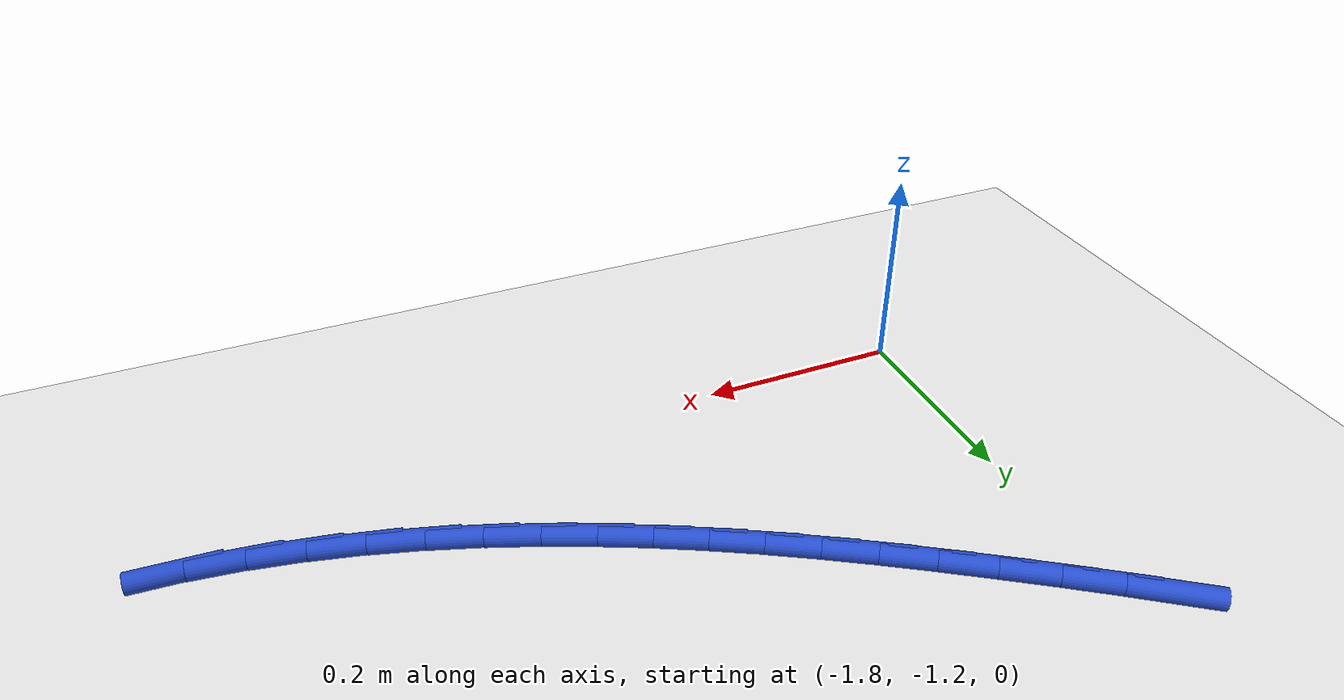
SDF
<sdf version="1.6">
 <world name="default">
  <model name="ground_plane">
   <static>1</static>
   <link name="link">
    <collision name="collision">
     <geometry><plane><normal>0 0 1</normal><size>100 100</size></plane></geometry>
     <surface><friction><ode><mu>100</mu><mu2>50</mu2></ode></friction></surface>
    </collision>
    <visual name="visual">
     <cast_shadows>0</cast_shadows>
     <geometry><plane><normal>0 0 1</normal><size>100 100</size></plane></geometry>
     <material>
      <script><uri>file://media/materials/scripts/gazebo.material</uri><name>Gazebo/WhiteGlow</name></script>
     </material>
    </visual>
   </link>
  </model>
  <model name="line">
   <link name="link_88">
    <pose>-1.8318578068275178 -0.7931754695844486 0.01 0 1.57 -0.6133328508145751</pose>
    <collision name="collision">
     <geometry><cylinder><radius>0.01</radius><length>0.08</length></cylinder></geometry>
    </collision>
    <visual name="visual">
     <material>
      <script><name>Gazebo/Blue</name><uri>file://media/materials/scripts/gazebo.material</uri></script>
     </material>
     <geometry><cylinder><radius>0.01</radius><length>0.08</length></cylinder></geometry>
    </visual>
   </link>
   <link name="link_89">
    <pose>-1.7900398897268737 -0.8226107405698052 0.01 0 1.57 -0.5955337732191922</pose>
    <collision name="collision">
     <geometry><cylinder><radius>0.01</radius><length>0.08</length></cylinder></geometry>
    </collision>
    <visual name="visual">
     <material>
      <script><name>Gazebo/Blue</name><uri>file://media/materials/scripts/gazebo.material</uri></script>
     </material>
     <geometry><cylinder><radius>0.01</radius><length>0.08</length></cylinder></geometry>
    </visual>
   </link>
   <link name="link_90">
    <pose>-1.748051304213296 -0.8510622113225482 0.01 0 1.57 -0.5842450995692731</pose>
    <collision name="collision">
     <geometry><cylinder><radius>0.01</radius><length>0.08</length></cylinder></geometry>
    </collision>
    <visual name="visual">
     <material>
      <script><name>Gazebo/Blue</name><uri>file://media/materials/scripts/gazebo.material</uri></script>
     </material>
     <geometry><cylinder><radius>0.01</radius><length>0.08</length></cylinder></geometry>
    </visual>
   </link>
   <link name="link_91">
    <pose>-1.706406506679395 -0.8785999460265086 0.01 0 1.57 -0.5732049060419735</pose>
    <collision name="collision">
     <geometry><cylinder><radius>0.01</radius><length>0.08</length></cylinder></geometry>
    </collision>
    <visual name="visual">
     <material>
      <script><name>Gazebo/Blue</name><uri>file://media/materials/scripts/gazebo.material</uri></script>
     </material>
     <geometry><cylinder><radius>0.01</radius><length>0.08</length></cylinder></geometry>
    </visual>
   </link>
   <link name="link_92">
    <pose>-1.6651506532471734 -0.9052305782405219 0.01 0 1.57 -0.5584300908195082</pose>
    <collision name="collision">
     <geometry><cylinder><radius>0.01</radius><length>0.08</length></cylinder></geometry>
    </collision>
    <visual name="visual">
     <material>
      <script><name>Gazebo/Blue</name><uri>file://media/materials/scripts/gazebo.material</uri></script>
     </material>
     <geometry><cylinder><radius>0.01</radius><length>0.08</length></cylinder></geometry>
    </visual>
   </link>
   <link name="link_93">
    <pose>-1.6240312744871561 -0.9309205144536223 0.01 0 1.57 -0.5399012512269443</pose>
    <collision name="collision">
     <geometry><cylinder><radius>0.01</radius><length>0.08</length></cylinder></geometry>
    </collision>
    <visual name="visual">
     <material>
      <script><name>Gazebo/Blue</name><uri>file://media/materials/scripts/gazebo.material</uri></script>
     </material>
     <geometry><cylinder><radius>0.01</radius><length>0.08</length></cylinder></geometry>
    </visual>
   </link>
   <link name="link_94">
    <pose>-1.582791166820843 -0.955635521287258 0.01 0 1.57 -0.5177703478051598</pose>
    <collision name="collision">
     <geometry><cylinder><radius>0.01</radius><length>0.08</length></cylinder></geometry>
    </collision>
    <visual name="visual">
     <material>
      <script><name>Gazebo/Blue</name><uri>file://media/materials/scripts/gazebo.material</uri></script>
     </material>
     <geometry><cylinder><radius>0.01</radius><length>0.08</length></cylinder></geometry>
    </visual>
   </link>
   <link name="link_95">
    <pose>-1.5411731266697324 -0.9793413653628765 0.01 0 1.57 -0.49230220709086614</pose>
    <collision name="collision">
     <geometry><cylinder><radius>0.01</radius><length>0.08</length></cylinder></geometry>
    </collision>
    <visual name="visual">
     <material>
      <script><name>Gazebo/Blue</name><uri>file://media/materials/scripts/gazebo.material</uri></script>
     </material>
     <geometry><cylinder><radius>0.01</radius><length>0.08</length></cylinder></geometry>
    </visual>
   </link>
   <link name="link_96">
    <pose>-1.4989199504553243 -1.0020038133019242 0.01 0 1.57 -0.4638712085479937</pose>
    <collision name="collision">
     <geometry><cylinder><radius>0.01</radius><length>0.08</length></cylinder></geometry>
    </collision>
    <visual name="visual">
     <material>
      <script><name>Gazebo/Blue</name><uri>file://media/materials/scripts/gazebo.material</uri></script>
     </material>
     <geometry><cylinder><radius>0.01</radius><length>0.08</length></cylinder></geometry>
    </visual>
   </link>
   <link name="link_97">
    <pose>-1.455774434599119 -1.0235886317258494 0.01 0 1.57 -0.43294335362747244</pose>
    <collision name="collision">
     <geometry><cylinder><radius>0.01</radius><length>0.08</length></cylinder></geometry>
    </collision>
    <visual name="visual">
     <material>
      <script><name>Gazebo/Blue</name><uri>file://media/materials/scripts/gazebo.material</uri></script>
     </material>
     <geometry><cylinder><radius>0.01</radius><length>0.08</length></cylinder></geometry>
    </visual>
   </link>
   <link name="link_98">
    <pose>-1.411482765635323 -1.0440597223734103 0.01 0 1.57 -0.3996310521360238</pose>
    <collision name="collision">
     <geometry><cylinder><radius>0.01</radius><length>0.08</length></cylinder></geometry>
    </collision>
    <visual name="visual">
     <material>
      <script><name>Gazebo/Blue</name><uri>file://media/materials/scripts/gazebo.material</uri></script>
     </material>
     <geometry><cylinder><radius>0.01</radius><length>0.08</length></cylinder></geometry>
    </visual>
   </link>
   <link name="link_99">
    <pose>-1.3659713381320435 -1.063281855517334 0.01 0 1.57 -0.3632738160665019</pose>
    <collision name="collision">
     <geometry><cylinder><radius>0.01</radius><length>0.08</length></cylinder></geometry>
    </collision>
    <visual name="visual">
     <material>
      <script><name>Gazebo/Blue</name><uri>file://media/materials/scripts/gazebo.material</uri></script>
     </material>
     <geometry><cylinder><radius>0.01</radius><length>0.08</length></cylinder></geometry>
    </visual>
   </link>
   <link name="link_100">
    <pose>-1.3194332886292257 -1.0809730681124785 0.01 0 1.57 -0.32333017129916647</pose>
    <collision name="collision">
     <geometry><cylinder><radius>0.01</radius><length>0.08</length></cylinder></geometry>
    </collision>
    <visual name="visual">
     <material>
      <script><name>Gazebo/Blue</name><uri>file://media/materials/scripts/gazebo.material</uri></script>
     </material>
     <geometry><cylinder><radius>0.01</radius><length>0.08</length></cylinder></geometry>
    </visual>
   </link>
   <link name="link_101">
    <pose>-1.272083289329398 -1.0968395504620416 0.01 0 1.57 -0.27923884316806485</pose>
    <collision name="collision">
     <geometry><cylinder><radius>0.01</radius><length>0.08</length></cylinder></geometry>
    </collision>
    <visual name="visual">
     <material>
      <script><name>Gazebo/Blue</name><uri>file://media/materials/scripts/gazebo.material</uri></script>
     </material>
     <geometry><cylinder><radius>0.01</radius><length>0.08</length></cylinder></geometry>
    </visual>
   </link>
   <link name="link_102">
    <pose>-1.2241360124350873 -1.1105874928692232 0.01 0 1.57 -0.23038191614448647</pose>
    <collision name="collision">
     <geometry><cylinder><radius>0.01</radius><length>0.08</length></cylinder></geometry>
    </collision>
    <visual name="visual">
     <material>
      <script><name>Gazebo/Blue</name><uri>file://media/materials/scripts/gazebo.material</uri></script>
     </material>
     <geometry><cylinder><radius>0.01</radius><length>0.08</length></cylinder></geometry>
    </visual>
   </link>
   <link name="link_103">
    <pose>-1.1758061301488212 -1.121923085637221 0.01 0 1.57 -0.17609151982380267</pose>
    <collision name="collision">
     <geometry><cylinder><radius>0.01</radius><length>0.08</length></cylinder></geometry>
    </collision>
    <visual name="visual">
     <material>
      <script><name>Gazebo/Blue</name><uri>file://media/materials/scripts/gazebo.material</uri></script>
     </material>
     <geometry><cylinder><radius>0.01</radius><length>0.08</length></cylinder></geometry>
    </visual>
   </link>
   <link name="link_104">
    <pose>-1.127308314673127 -1.1305525190692356 0.01 0 1.57 -0.11566998766903314</pose>
    <collision name="collision">
     <geometry><cylinder><radius>0.01</radius><length>0.08</length></cylinder></geometry>
    </collision>
    <visual name="visual">
     <material>
      <script><name>Gazebo/Blue</name><uri>file://media/materials/scripts/gazebo.material</uri></script>
     </material>
     <geometry><cylinder><radius>0.01</radius><length>0.08</length></cylinder></geometry>
    </visual>
   </link>
   <link name="link_105">
    <pose>-1.0788572382105337 -1.136181983468464 0.01 0 1.57 -0.048430700434600155</pose>
    <collision name="collision">
     <geometry><cylinder><radius>0.01</radius><length>0.08</length></cylinder></geometry>
    </collision>
    <visual name="visual">
     <material>
      <script><name>Gazebo/Blue</name><uri>file://media/materials/scripts/gazebo.material</uri></script>
     </material>
     <geometry><cylinder><radius>0.01</radius><length>0.08</length></cylinder></geometry>
    </visual>
   </link>
  </model>
 </world>
</sdf>
